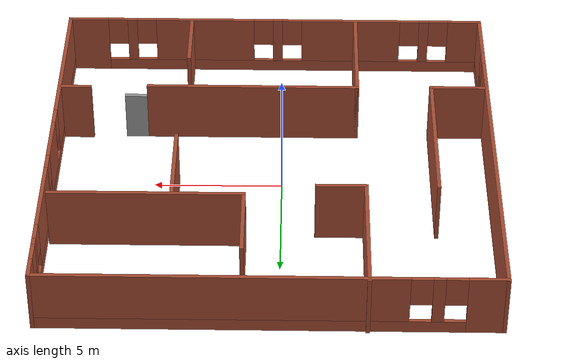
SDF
<sdf version="1.7">
 <world name="default">
  <light name="sun" type="directional">
   <pose>0 0 10 0 -0 0</pose>
   <diffuse>0.8 0.8 0.8 1</diffuse>
   <specular>0.2 0.2 0.2 1</specular>
   <attenuation>
    <range>1000</range>
    <constant>0.9</constant>
    <linear>0.01</linear>
    <quadratic>0.001</quadratic>
   </attenuation>
   <direction>-0.5 0.1 -0.9</direction>
   <spot><inner_angle>0</inner_angle><outer_angle>0</outer_angle><falloff>0</falloff></spot>
  </light>
  <gravity>0 0 -9.8</gravity>
  <magnetic_field>6e-06 2.3e-05 -4.2e-05</magnetic_field>
  <atmosphere type="adiabatic"/>
  <physics type="ode">
   <max_step_size>0.001</max_step_size>
   <real_time_factor>1</real_time_factor>
   <real_time_update_rate>1000</real_time_update_rate>
  </physics>
  <scene><ambient>0.4 0.4 0.4 1</ambient><background>0.7 0.7 0.7 1</background><shadows>1</shadows></scene>
  <audio><device>default</device></audio>
  <spherical_coordinates>
   <surface_model>EARTH_WGS84</surface_model>
   <latitude_deg>0</latitude_deg>
   <longitude_deg>0</longitude_deg>
   <elevation>0</elevation>
   <heading_deg>0</heading_deg>
  </spherical_coordinates>
  <model name="house">
   <pose>0.39455 0.17929 0 0 -0 0</pose>
   <link name="Door_0">
    <collision name="Door_0_Collision">
     <geometry><box><size>0.9 0.17 2</size></box></geometry>
     <pose>0 0 1 0 -0 0</pose>
    </collision>
    <visual name="Door_0_Visual">
     <pose>0 0 1 0 -0 0</pose>
     <geometry><box><size>0.9 0.17 2</size></box></geometry>
     <material>
      <script><uri>file://media/materials/scripts/gazebo.material</uri><name>Gazebo/Grey</name></script>
     </material>
    </visual>
    <pose>5.4969 -3.46946 0 0 -0 0</pose>
   </link>
   <link name="Wall_0">
    <pose>-8.55105 -0.029821 0 0 -0 -1.5708</pose>
    <visual name="Wall_0_Visual_0">
     <pose>-1.53541 0 1.25 0 -0 0</pose>
     <geometry><box><size>13.4292 0.15 2.5</size></box></geometry>
     <material>
      <script><uri>file://media/materials/scripts/gazebo.material</uri><name>Gazebo/Bricks</name></script>
      <ambient>1 1 1 1</ambient>
     </material>
     <meta><layer>0</layer></meta>
    </visual>
    <collision name="Wall_0_Collision_0">
     <geometry><box><size>13.4292 0.15 2.5</size></box></geometry>
     <pose>-1.53541 0 1.25 0 -0 0</pose>
    </collision>
    <visual name="Wall_0_Visual_1">
     <pose>6.71459 0 0.25 0 -0 0</pose>
     <geometry><box><size>3.07082 0.15 0.5</size></box></geometry>
     <material>
      <script><uri>file://media/materials/scripts/gazebo.material</uri><name>Gazebo/Bricks</name></script>
      <ambient>1 1 1 1</ambient>
     </material>
     <meta><layer>0</layer></meta>
    </visual>
    <collision name="Wall_0_Collision_1">
     <geometry><box><size>3.07082 0.15 0.5</size></box></geometry>
     <pose>6.71459 0 0.25 0 -0 0</pose>
    </collision>
    <visual name="Wall_0_Visual_2">
     <pose>7.11459 0 1.5 0 -0 0</pose>
     <geometry><box><size>2.27082 0.15 2</size></box></geometry>
     <material>
      <script><uri>file://media/materials/scripts/gazebo.material</uri><name>Gazebo/Bricks</name></script>
      <ambient>1 1 1 1</ambient>
     </material>
     <meta><layer>0</layer></meta>
    </visual>
    <collision name="Wall_0_Collision_2">
     <geometry><box><size>2.27082 0.15 2</size></box></geometry>
     <pose>7.11459 0 1.5 0 -0 0</pose>
    </collision>
    <visual name="Wall_0_Visual_3">
     <pose>5.57918 0 1.9 0 -0 0</pose>
     <geometry><box><size>0.8 0.15 1.2</size></box></geometry>
     <material>
      <script><uri>file://media/materials/scripts/gazebo.material</uri><name>Gazebo/Bricks</name></script>
      <ambient>1 1 1 1</ambient>
     </material>
     <meta><layer>0</layer></meta>
    </visual>
    <collision name="Wall_0_Collision_3">
     <geometry><box><size>0.8 0.15 1.2</size></box></geometry>
     <pose>5.57918 0 1.9 0 -0 0</pose>
    </collision>
   </link>
   <link name="Wall_11">
    <collision name="Wall_11_Collision">
     <geometry><box><size>2.75 0.15 2.5</size></box></geometry>
     <pose>0 0 1.25 0 -0 0</pose>
    </collision>
    <visual name="Wall_11_Visual">
     <pose>0 0 1.25 0 -0 0</pose>
     <geometry><box><size>2.75 0.15 2.5</size></box></geometry>
     <material>
      <script><uri>file://media/materials/scripts/gazebo.material</uri><name>Gazebo/Bricks</name></script>
      <ambient>1 1 1 1</ambient>
     </material>
     <meta><layer>0</layer></meta>
    </visual>
    <pose>3.45894 -6.74753 0 0 -0 1.5708</pose>
   </link>
   <link name="Wall_13">
    <collision name="Wall_13_Collision">
     <geometry><box><size>2.25 0.15 2.5</size></box></geometry>
     <pose>0 0 1.25 0 -0 0</pose>
    </collision>
    <visual name="Wall_13_Visual">
     <pose>0 0 1.25 0 -0 0</pose>
     <geometry><box><size>2.25 0.15 2.5</size></box></geometry>
     <material>
      <script><uri>file://media/materials/scripts/gazebo.material</uri><name>Gazebo/Bricks</name></script>
      <ambient>1 1 1 1</ambient>
     </material>
     <meta><layer>0</layer></meta>
    </visual>
    <pose>-7.38906 -3.49353 0 0 -0 3.14159</pose>
   </link>
   <link name="Wall_18">
    <collision name="Wall_18_Collision">
     <geometry><box><size>1.25 0.15 2.5</size></box></geometry>
     <pose>0 0 1.25 0 -0 0</pose>
    </collision>
    <visual name="Wall_18_Visual">
     <pose>0 0 1.25 0 -0 0</pose>
     <geometry><box><size>1.25 0.15 2.5</size></box></geometry>
     <material>
      <script><uri>file://media/materials/scripts/gazebo.material</uri><name>Gazebo/Bricks</name></script>
      <ambient>1 1 1 1</ambient>
     </material>
     <meta><layer>0</layer></meta>
    </visual>
    <pose>7.89518 -3.36552 0 0 -0 3.14159</pose>
   </link>
   <link name="Wall_20">
    <collision name="Wall_20_Collision">
     <geometry><box><size>7.5 0.15 2.5</size></box></geometry>
     <pose>0 0 1.25 0 -0 0</pose>
    </collision>
    <visual name="Wall_20_Visual">
     <pose>0 0 1.25 0 -0 0</pose>
     <geometry><box><size>7.5 0.15 2.5</size></box></geometry>
     <material>
      <script><uri>file://media/materials/scripts/gazebo.material</uri><name>Gazebo/Bricks</name></script>
      <ambient>1 1 1 1</ambient>
     </material>
     <meta><layer>0</layer></meta>
    </visual>
    <pose>4.66583 3.41708 0 0 -0 3.14159</pose>
   </link>
   <link name="Wall_21">
    <collision name="Wall_21_Collision">
     <geometry><box><size>3.25 0.15 2.5</size></box></geometry>
     <pose>0 0 1.25 0 -0 0</pose>
    </collision>
    <visual name="Wall_21_Visual">
     <pose>0 0 1.25 0 -0 0</pose>
     <geometry><box><size>3.25 0.15 2.5</size></box></geometry>
     <material>
      <script><uri>file://media/materials/scripts/gazebo.material</uri><name>Gazebo/Bricks</name></script>
      <ambient>1 1 1 1</ambient>
     </material>
     <meta><layer>0</layer></meta>
    </visual>
    <pose>0.990832 4.96708 0 0 -0 1.5708</pose>
   </link>
   <link name="Wall_23">
    <collision name="Wall_23_Collision">
     <geometry><box><size>5.5 0.15 2.5</size></box></geometry>
     <pose>0 0 1.25 0 -0 0</pose>
    </collision>
    <visual name="Wall_23_Visual">
     <pose>0 0 1.25 0 -0 0</pose>
     <geometry><box><size>5.5 0.15 2.5</size></box></geometry>
     <material>
      <script><uri>file://media/materials/scripts/gazebo.material</uri><name>Gazebo/Bricks</name></script>
      <ambient>1 1 1 1</ambient>
     </material>
     <meta><layer>0</layer></meta>
    </visual>
    <pose>-3.60699 5.54208 0 0 -0 -1.5708</pose>
   </link>
   <link name="Wall_24">
    <collision name="Wall_24_Collision">
     <geometry><box><size>2 0.15 2.5</size></box></geometry>
     <pose>0 0 1.25 0 -0 0</pose>
    </collision>
    <visual name="Wall_24_Visual">
     <pose>0 0 1.25 0 -0 0</pose>
     <geometry><box><size>2 0.15 2.5</size></box></geometry>
     <material>
      <script><uri>file://media/materials/scripts/gazebo.material</uri><name>Gazebo/Bricks</name></script>
      <ambient>1 1 1 1</ambient>
     </material>
     <meta><layer>0</layer></meta>
    </visual>
    <pose>-2.68199 2.86708 0 0 -0 0</pose>
   </link>
   <link name="Wall_26">
    <collision name="Wall_26_Collision">
     <geometry><box><size>6.5 0.15 2.5</size></box></geometry>
     <pose>0 0 1.25 0 -0 0</pose>
    </collision>
    <visual name="Wall_26_Visual">
     <pose>0 0 1.25 0 -0 0</pose>
     <geometry><box><size>6.5 0.15 2.5</size></box></geometry>
     <material>
      <script><uri>file://media/materials/scripts/gazebo.material</uri><name>Gazebo/Bricks</name></script>
      <ambient>1 1 1 1</ambient>
     </material>
     <meta><layer>0</layer></meta>
    </visual>
    <pose>-6.33906 -0.318534 0 0 -0 1.5708</pose>
   </link>
   <link name="Wall_28">
    <collision name="Wall_28_Collision">
     <geometry><box><size>3.75 0.15 2.5</size></box></geometry>
     <pose>0 0 1.25 0 -0 0</pose>
    </collision>
    <visual name="Wall_28_Visual">
     <pose>0 0 1.25 0 -0 0</pose>
     <geometry><box><size>3.75 0.15 2.5</size></box></geometry>
     <material>
      <script><uri>file://media/materials/scripts/gazebo.material</uri><name>Gazebo/Bricks</name></script>
      <ambient>1 1 1 1</ambient>
     </material>
     <meta><layer>0</layer></meta>
    </visual>
    <pose>3.69735 1.61708 0 0 -0 -1.5708</pose>
   </link>
   <link name="Wall_3">
    <pose>0.001046 8.13297 0 0 -0 0</pose>
    <visual name="Wall_3_Visual_0">
     <pose>-7.88174 0 1.25 0 -0 0</pose>
     <geometry><box><size>1.48653 0.15 2.5</size></box></geometry>
     <material>
      <script><uri>file://media/materials/scripts/gazebo.material</uri><name>Gazebo/Bricks</name></script>
      <ambient>1 1 1 1</ambient>
     </material>
     <meta><layer>0</layer></meta>
    </visual>
    <collision name="Wall_3_Collision_0">
     <geometry><box><size>1.48653 0.15 2.5</size></box></geometry>
     <pose>-7.88174 0 1.25 0 -0 0</pose>
    </collision>
    <visual name="Wall_3_Visual_1">
     <pose>0.743262 0 0.25 0 -0 0</pose>
     <geometry><box><size>15.7635 0.15 0.5</size></box></geometry>
     <material>
      <script><uri>file://media/materials/scripts/gazebo.material</uri><name>Gazebo/Bricks</name></script>
      <ambient>1 1 1 1</ambient>
     </material>
     <meta><layer>0</layer></meta>
    </visual>
    <collision name="Wall_3_Collision_1">
     <geometry><box><size>15.7635 0.15 0.5</size></box></geometry>
     <pose>0.743262 0 0.25 0 -0 0</pose>
    </collision>
    <visual name="Wall_3_Visual_2">
     <pose>-6.11239 0 1.5 0 -0 0</pose>
     <geometry><box><size>0.452174 0.15 2</size></box></geometry>
     <material>
      <script><uri>file://media/materials/scripts/gazebo.material</uri><name>Gazebo/Bricks</name></script>
      <ambient>1 1 1 1</ambient>
     </material>
     <meta><layer>0</layer></meta>
    </visual>
    <collision name="Wall_3_Collision_2">
     <geometry><box><size>0.452174 0.15 2</size></box></geometry>
     <pose>-6.11239 0 1.5 0 -0 0</pose>
    </collision>
    <visual name="Wall_3_Visual_3">
     <pose>1.76935 0 1.5 0 -0 0</pose>
     <geometry><box><size>13.7113 0.15 2</size></box></geometry>
     <material>
      <script><uri>file://media/materials/scripts/gazebo.material</uri><name>Gazebo/Bricks</name></script>
      <ambient>1 1 1 1</ambient>
     </material>
     <meta><layer>0</layer></meta>
    </visual>
    <collision name="Wall_3_Collision_3">
     <geometry><box><size>13.7113 0.15 2</size></box></geometry>
     <pose>1.76935 0 1.5 0 -0 0</pose>
    </collision>
    <visual name="Wall_3_Visual_4">
     <pose>-6.73848 0 1.9 0 -0 0</pose>
     <geometry><box><size>0.8 0.15 1.2</size></box></geometry>
     <material>
      <script><uri>file://media/materials/scripts/gazebo.material</uri><name>Gazebo/Bricks</name></script>
      <ambient>1 1 1 1</ambient>
     </material>
     <meta><layer>0</layer></meta>
    </visual>
    <collision name="Wall_3_Collision_4">
     <geometry><box><size>0.8 0.15 1.2</size></box></geometry>
     <pose>-6.73848 0 1.9 0 -0 0</pose>
    </collision>
    <visual name="Wall_3_Visual_5">
     <pose>-5.4863 0 1.9 0 -0 0</pose>
     <geometry><box><size>0.8 0.15 1.2</size></box></geometry>
     <material>
      <script><uri>file://media/materials/scripts/gazebo.material</uri><name>Gazebo/Bricks</name></script>
      <ambient>1 1 1 1</ambient>
     </material>
     <meta><layer>0</layer></meta>
    </visual>
    <collision name="Wall_3_Collision_5">
     <geometry><box><size>0.8 0.15 1.2</size></box></geometry>
     <pose>-5.4863 0 1.9 0 -0 0</pose>
    </collision>
   </link>
   <link name="Wall_5">
    <pose>8.55105 -0.04203 0 0 -0 -1.5708</pose>
    <visual name="Wall_5_Visual_0">
     <pose>-7.7763 0 1.25 0 -0 0</pose>
     <geometry><box><size>0.947407 0.15 2.5</size></box></geometry>
     <material>
      <script><uri>file://media/materials/scripts/gazebo.material</uri><name>Gazebo/Bricks</name></script>
      <ambient>1 1 1 1</ambient>
     </material>
     <meta><layer>0</layer></meta>
    </visual>
    <collision name="Wall_5_Collision_0">
     <geometry><box><size>0.947407 0.15 2.5</size></box></geometry>
     <pose>-7.7763 0 1.25 0 -0 0</pose>
    </collision>
    <visual name="Wall_5_Visual_1">
     <pose>0.473704 0 0.25 0 -0 0</pose>
     <geometry><box><size>15.5526 0.15 0.5</size></box></geometry>
     <material>
      <script><uri>file://media/materials/scripts/gazebo.material</uri><name>Gazebo/Bricks</name></script>
      <ambient>1 1 1 1</ambient>
     </material>
     <meta><layer>0</layer></meta>
    </visual>
    <collision name="Wall_5_Collision_1">
     <geometry><box><size>15.5526 0.15 0.5</size></box></geometry>
     <pose>0.473704 0 0.25 0 -0 0</pose>
    </collision>
    <visual name="Wall_5_Visual_2">
     <pose>-6.32868 0 1.5 0 -0 0</pose>
     <geometry><box><size>0.347826 0.15 2</size></box></geometry>
     <material>
      <script><uri>file://media/materials/scripts/gazebo.material</uri><name>Gazebo/Bricks</name></script>
      <ambient>1 1 1 1</ambient>
     </material>
     <meta><layer>0</layer></meta>
    </visual>
    <collision name="Wall_5_Collision_2">
     <geometry><box><size>0.347826 0.15 2</size></box></geometry>
     <pose>-6.32868 0 1.5 0 -0 0</pose>
    </collision>
    <visual name="Wall_5_Visual_3">
     <pose>-3.6856 0 1.5 0 -0 0</pose>
     <geometry><box><size>3.33834 0.15 2</size></box></geometry>
     <material>
      <script><uri>file://media/materials/scripts/gazebo.material</uri><name>Gazebo/Bricks</name></script>
      <ambient>1 1 1 1</ambient>
     </material>
     <meta><layer>0</layer></meta>
    </visual>
    <collision name="Wall_5_Collision_3">
     <geometry><box><size>3.33834 0.15 2</size></box></geometry>
     <pose>-3.6856 0 1.5 0 -0 0</pose>
    </collision>
    <visual name="Wall_5_Visual_4">
     <pose>-0.158458 0 1.5 0 -0 0</pose>
     <geometry><box><size>2.11594 0.15 2</size></box></geometry>
     <material>
      <script><uri>file://media/materials/scripts/gazebo.material</uri><name>Gazebo/Bricks</name></script>
      <ambient>1 1 1 1</ambient>
     </material>
     <meta><layer>0</layer></meta>
    </visual>
    <collision name="Wall_5_Collision_4">
     <geometry><box><size>2.11594 0.15 2</size></box></geometry>
     <pose>-0.158458 0 1.5 0 -0 0</pose>
    </collision>
    <visual name="Wall_5_Visual_5">
     <pose>4.97476 0 1.5 0 -0 0</pose>
     <geometry><box><size>6.55049 0.15 2</size></box></geometry>
     <material>
      <script><uri>file://media/materials/scripts/gazebo.material</uri><name>Gazebo/Bricks</name></script>
      <ambient>1 1 1 1</ambient>
     </material>
     <meta><layer>0</layer></meta>
    </visual>
    <collision name="Wall_5_Collision_5">
     <geometry><box><size>6.55049 0.15 2</size></box></geometry>
     <pose>4.97476 0 1.5 0 -0 0</pose>
    </collision>
    <visual name="Wall_5_Visual_6">
     <pose>-6.90259 0 1.9 0 -0 0</pose>
     <geometry><box><size>0.8 0.15 1.2</size></box></geometry>
     <material>
      <script><uri>file://media/materials/scripts/gazebo.material</uri><name>Gazebo/Bricks</name></script>
      <ambient>1 1 1 1</ambient>
     </material>
     <meta><layer>0</layer></meta>
    </visual>
    <collision name="Wall_5_Collision_6">
     <geometry><box><size>0.8 0.15 1.2</size></box></geometry>
     <pose>-6.90259 0 1.9 0 -0 0</pose>
    </collision>
    <visual name="Wall_5_Visual_7">
     <pose>-5.75477 0 1.9 0 -0 0</pose>
     <geometry><box><size>0.8 0.15 1.2</size></box></geometry>
     <material>
      <script><uri>file://media/materials/scripts/gazebo.material</uri><name>Gazebo/Bricks</name></script>
      <ambient>1 1 1 1</ambient>
     </material>
     <meta><layer>0</layer></meta>
    </visual>
    <collision name="Wall_5_Collision_7">
     <geometry><box><size>0.8 0.15 1.2</size></box></geometry>
     <pose>-5.75477 0 1.9 0 -0 0</pose>
    </collision>
    <visual name="Wall_5_Visual_8">
     <pose>-1.61643 0 1.9 0 -0 0</pose>
     <geometry><box><size>0.8 0.15 1.2</size></box></geometry>
     <material>
      <script><uri>file://media/materials/scripts/gazebo.material</uri><name>Gazebo/Bricks</name></script>
      <ambient>1 1 1 1</ambient>
     </material>
     <meta><layer>0</layer></meta>
    </visual>
    <collision name="Wall_5_Collision_8">
     <geometry><box><size>0.8 0.15 1.2</size></box></geometry>
     <pose>-1.61643 0 1.9 0 -0 0</pose>
    </collision>
    <visual name="Wall_5_Visual_9">
     <pose>1.29951 0 1.9 0 -0 0</pose>
     <geometry><box><size>0.8 0.15 1.2</size></box></geometry>
     <material>
      <script><uri>file://media/materials/scripts/gazebo.material</uri><name>Gazebo/Bricks</name></script>
      <ambient>1 1 1 1</ambient>
     </material>
     <meta><layer>0</layer></meta>
    </visual>
    <collision name="Wall_5_Collision_9">
     <geometry><box><size>0.8 0.15 1.2</size></box></geometry>
     <pose>1.29951 0 1.9 0 -0 0</pose>
    </collision>
   </link>
   <link name="Wall_6">
    <pose>0 -8.21093 0 0 -0 3.14088</pose>
    <visual name="Wall_6_Visual_0">
     <pose>-7.79652 0 1.25 0 -0 0</pose>
     <geometry><box><size>1.65905 0.15 2.5</size></box></geometry>
     <material>
      <script><uri>file://media/materials/scripts/gazebo.material</uri><name>Gazebo/Bricks</name></script>
      <ambient>1 1 1 1</ambient>
     </material>
     <meta><layer>0</layer></meta>
    </visual>
    <collision name="Wall_6_Collision_0">
     <geometry><box><size>1.65905 0.15 2.5</size></box></geometry>
     <pose>-7.79652 0 1.25 0 -0 0</pose>
    </collision>
    <visual name="Wall_6_Visual_1">
     <pose>0.829526 0 0.25 0 -0 0</pose>
     <geometry><box><size>15.593 0.15 0.5</size></box></geometry>
     <material>
      <script><uri>file://media/materials/scripts/gazebo.material</uri><name>Gazebo/Bricks</name></script>
      <ambient>1 1 1 1</ambient>
     </material>
     <meta><layer>0</layer></meta>
    </visual>
    <collision name="Wall_6_Collision_1">
     <geometry><box><size>15.593 0.15 0.5</size></box></geometry>
     <pose>0.829526 0 0.25 0 -0 0</pose>
    </collision>
    <visual name="Wall_6_Visual_2">
     <pose>-5.96694 0 1.5 0 -0 0</pose>
     <geometry><box><size>0.400112 0.15 2</size></box></geometry>
     <material>
      <script><uri>file://media/materials/scripts/gazebo.material</uri><name>Gazebo/Bricks</name></script>
      <ambient>1 1 1 1</ambient>
     </material>
     <meta><layer>0</layer></meta>
    </visual>
    <collision name="Wall_6_Collision_2">
     <geometry><box><size>0.400112 0.15 2</size></box></geometry>
     <pose>-5.96694 0 1.5 0 -0 0</pose>
    </collision>
    <visual name="Wall_6_Visual_3">
     <pose>-2.91473 0 1.5 0 -0 0</pose>
     <geometry><box><size>4.10431 0.15 2</size></box></geometry>
     <material>
      <script><uri>file://media/materials/scripts/gazebo.material</uri><name>Gazebo/Bricks</name></script>
      <ambient>1 1 1 1</ambient>
     </material>
     <meta><layer>0</layer></meta>
    </visual>
    <collision name="Wall_6_Collision_3">
     <geometry><box><size>4.10431 0.15 2</size></box></geometry>
     <pose>-2.91473 0 1.5 0 -0 0</pose>
    </collision>
    <visual name="Wall_6_Visual_4">
     <pose>0.137443 0 1.5 0 -0 0</pose>
     <geometry><box><size>0.400037 0.15 2</size></box></geometry>
     <material>
      <script><uri>file://media/materials/scripts/gazebo.material</uri><name>Gazebo/Bricks</name></script>
      <ambient>1 1 1 1</ambient>
     </material>
     <meta><layer>0</layer></meta>
    </visual>
    <collision name="Wall_6_Collision_4">
     <geometry><box><size>0.400037 0.15 2</size></box></geometry>
     <pose>0.137443 0 1.5 0 -0 0</pose>
    </collision>
    <visual name="Wall_6_Visual_5">
     <pose>3.18963 0 1.5 0 -0 0</pose>
     <geometry><box><size>4.10435 0.15 2</size></box></geometry>
     <material>
      <script><uri>file://media/materials/scripts/gazebo.material</uri><name>Gazebo/Bricks</name></script>
      <ambient>1 1 1 1</ambient>
     </material>
     <meta><layer>0</layer></meta>
    </visual>
    <collision name="Wall_6_Collision_5">
     <geometry><box><size>4.10435 0.15 2</size></box></geometry>
     <pose>3.18963 0 1.5 0 -0 0</pose>
    </collision>
    <visual name="Wall_6_Visual_6">
     <pose>6.24173 0 1.5 0 -0 0</pose>
     <geometry><box><size>0.399851 0.15 2</size></box></geometry>
     <material>
      <script><uri>file://media/materials/scripts/gazebo.material</uri><name>Gazebo/Bricks</name></script>
      <ambient>1 1 1 1</ambient>
     </material>
     <meta><layer>0</layer></meta>
    </visual>
    <collision name="Wall_6_Collision_6">
     <geometry><box><size>0.399851 0.15 2</size></box></geometry>
     <pose>6.24173 0 1.5 0 -0 0</pose>
    </collision>
    <visual name="Wall_6_Visual_7">
     <pose>7.93385 0 1.5 0 -0 0</pose>
     <geometry><box><size>1.38439 0.15 2</size></box></geometry>
     <material>
      <script><uri>file://media/materials/scripts/gazebo.material</uri><name>Gazebo/Bricks</name></script>
      <ambient>1 1 1 1</ambient>
     </material>
     <meta><layer>0</layer></meta>
    </visual>
    <collision name="Wall_6_Collision_7">
     <geometry><box><size>1.38439 0.15 2</size></box></geometry>
     <pose>7.93385 0 1.5 0 -0 0</pose>
    </collision>
    <visual name="Wall_6_Visual_8">
     <pose>-6.567 0 1.9 0 -0 0</pose>
     <geometry><box><size>0.8 0.15 1.2</size></box></geometry>
     <material>
      <script><uri>file://media/materials/scripts/gazebo.material</uri><name>Gazebo/Bricks</name></script>
      <ambient>1 1 1 1</ambient>
     </material>
     <meta><layer>0</layer></meta>
    </visual>
    <collision name="Wall_6_Collision_8">
     <geometry><box><size>0.8 0.15 1.2</size></box></geometry>
     <pose>-6.567 0 1.9 0 -0 0</pose>
    </collision>
    <visual name="Wall_6_Visual_9">
     <pose>-5.36688 0 1.9 0 -0 0</pose>
     <geometry><box><size>0.8 0.15 1.2</size></box></geometry>
     <material>
      <script><uri>file://media/materials/scripts/gazebo.material</uri><name>Gazebo/Bricks</name></script>
      <ambient>1 1 1 1</ambient>
     </material>
     <meta><layer>0</layer></meta>
    </visual>
    <collision name="Wall_6_Collision_9">
     <geometry><box><size>0.8 0.15 1.2</size></box></geometry>
     <pose>-5.36688 0 1.9 0 -0 0</pose>
    </collision>
    <visual name="Wall_6_Visual_10">
     <pose>-0.462575 0 1.9 0 -0 0</pose>
     <geometry><box><size>0.8 0.15 1.2</size></box></geometry>
     <material>
      <script><uri>file://media/materials/scripts/gazebo.material</uri><name>Gazebo/Bricks</name></script>
      <ambient>1 1 1 1</ambient>
     </material>
     <meta><layer>0</layer></meta>
    </visual>
    <collision name="Wall_6_Collision_10">
     <geometry><box><size>0.8 0.15 1.2</size></box></geometry>
     <pose>-0.462575 0 1.9 0 -0 0</pose>
    </collision>
    <visual name="Wall_6_Visual_11">
     <pose>0.737462 0 1.9 0 -0 0</pose>
     <geometry><box><size>0.8 0.15 1.2</size></box></geometry>
     <material>
      <script><uri>file://media/materials/scripts/gazebo.material</uri><name>Gazebo/Bricks</name></script>
      <ambient>1 1 1 1</ambient>
     </material>
     <meta><layer>0</layer></meta>
    </visual>
    <collision name="Wall_6_Collision_11">
     <geometry><box><size>0.8 0.15 1.2</size></box></geometry>
     <pose>0.737462 0 1.9 0 -0 0</pose>
    </collision>
    <visual name="Wall_6_Visual_12">
     <pose>5.64181 0 1.9 0 -0 0</pose>
     <geometry><box><size>0.8 0.15 1.2</size></box></geometry>
     <material>
      <script><uri>file://media/materials/scripts/gazebo.material</uri><name>Gazebo/Bricks</name></script>
      <ambient>1 1 1 1</ambient>
     </material>
     <meta><layer>0</layer></meta>
    </visual>
    <collision name="Wall_6_Collision_12">
     <geometry><box><size>0.8 0.15 1.2</size></box></geometry>
     <pose>5.64181 0 1.9 0 -0 0</pose>
    </collision>
    <visual name="Wall_6_Visual_13">
     <pose>6.84166 0 1.9 0 -0 0</pose>
     <geometry><box><size>0.8 0.15 1.2</size></box></geometry>
     <material>
      <script><uri>file://media/materials/scripts/gazebo.material</uri><name>Gazebo/Bricks</name></script>
      <ambient>1 1 1 1</ambient>
     </material>
     <meta><layer>0</layer></meta>
    </visual>
    <collision name="Wall_6_Collision_13">
     <geometry><box><size>0.8 0.15 1.2</size></box></geometry>
     <pose>6.84166 0 1.9 0 -0 0</pose>
    </collision>
   </link>
   <link name="Wall_8">
    <collision name="Wall_8_Collision">
     <geometry><box><size>4.75 0.15 2.5</size></box></geometry>
     <pose>0 0 1.25 0 -0 0</pose>
    </collision>
    <visual name="Wall_8_Visual">
     <pose>0 0 1.25 0 -0 0</pose>
     <geometry><box><size>4.75 0.15 2.5</size></box></geometry>
     <material>
      <script><uri>file://media/materials/scripts/gazebo.material</uri><name>Gazebo/Bricks</name></script>
      <ambient>1 1 1 1</ambient>
     </material>
     <meta><layer>0</layer></meta>
    </visual>
    <pose>-3.37206 -5.74753 0 0 -0 1.5708</pose>
   </link>
   <link name="Wall_9">
    <collision name="Wall_9_Collision">
     <geometry><box><size>8.5 0.15 2.5</size></box></geometry>
     <pose>0 0 1.25 0 -0 0</pose>
    </collision>
    <visual name="Wall_9_Visual">
     <pose>0 0 1.25 0 -0 0</pose>
     <geometry><box><size>8.5 0.15 2.5</size></box></geometry>
     <material>
      <script><uri>file://media/materials/scripts/gazebo.material</uri><name>Gazebo/Bricks</name></script>
      <ambient>1 1 1 1</ambient>
     </material>
     <meta><layer>0</layer></meta>
    </visual>
    <pose>0.802941 -3.44753 0 0 -0 0</pose>
   </link>
   <static>1</static>
  </model>
  <light name="user_point_light_0" type="point">
   <pose>-0.973141 -1.61352 1 0 -0 0</pose>
   <diffuse>0.5 0.5 0.5 1</diffuse>
   <specular>0.1 0.1 0.1 1</specular>
   <attenuation>
    <range>20</range>
    <constant>0.5</constant>
    <linear>0.01</linear>
    <quadratic>0.001</quadratic>
   </attenuation>
   <cast_shadows>0</cast_shadows>
   <direction>0 0 -1</direction>
  </light>
  <light name="user_point_light_1" type="point">
   <pose>0.784643 -6.01743 1 0 -0 0</pose>
   <diffuse>0.5 0.5 0.5 1</diffuse>
   <specular>0.1 0.1 0.1 1</specular>
   <attenuation>
    <range>20</range>
    <constant>0.5</constant>
    <linear>0.01</linear>
    <quadratic>0.001</quadratic>
   </attenuation>
   <cast_shadows>0</cast_shadows>
   <direction>0 0 -1</direction>
  </light>
  <light name="user_point_light_2" type="point">
   <pose>-5.48201 5.63598 1 0 -0 0</pose>
   <diffuse>0.5 0.5 0.5 1</diffuse>
   <specular>0.1 0.1 0.1 1</specular>
   <attenuation>
    <range>20</range>
    <constant>0.5</constant>
    <linear>0.01</linear>
    <quadratic>0.001</quadratic>
   </attenuation>
   <cast_shadows>0</cast_shadows>
   <direction>0 0 -1</direction>
  </light>
  <light name="user_point_light_3" type="point">
   <pose>5.91495 -0.719421 1 0 -0 0</pose>
   <diffuse>0.5 0.5 0.5 1</diffuse>
   <specular>0.1 0.1 0.1 1</specular>
   <attenuation>
    <range>20</range>
    <constant>0.5</constant>
    <linear>0.01</linear>
    <quadratic>0.001</quadratic>
   </attenuation>
   <cast_shadows>0</cast_shadows>
   <direction>0 0 -1</direction>
  </light>
  <light name="user_spot_light_0" type="spot">
   <pose>-58.0286 -39.2318 1 0 -0 0</pose>
   <diffuse>0.5 0.5 0.5 1</diffuse>
   <specular>0.1 0.1 0.1 1</specular>
   <direction>0 0 -1</direction>
   <attenuation>
    <range>20</range>
    <constant>0.5</constant>
    <linear>0.01</linear>
    <quadratic>0.001</quadratic>
   </attenuation>
   <cast_shadows>0</cast_shadows>
   <spot><inner_angle>0.6</inner_angle><outer_angle>1</outer_angle><falloff>1</falloff></spot>
  </light>
  <light name="user_point_light_4" type="point">
   <pose>5.49155 6.11423 1 0 -0 0</pose>
   <diffuse>0.5 0.5 0.5 1</diffuse>
   <specular>0.1 0.1 0.1 1</specular>
   <attenuation>
    <range>20</range>
    <constant>0.5</constant>
    <linear>0.01</linear>
    <quadratic>0.001</quadratic>
   </attenuation>
   <cast_shadows>0</cast_shadows>
   <direction>0 0 -1</direction>
  </light>
  <light name="user_point_light_5" type="point">
   <pose>-7.24095 -0.077123 1 0 -0 0</pose>
   <diffuse>0.5 0.5 0.5 1</diffuse>
   <specular>0.1 0.1 0.1 1</specular>
   <attenuation>
    <range>20</range>
    <constant>0.5</constant>
    <linear>0.01</linear>
    <quadratic>0.001</quadratic>
   </attenuation>
   <cast_shadows>0</cast_shadows>
   <direction>0 0 -1</direction>
  </light>
 </world>
</sdf>
